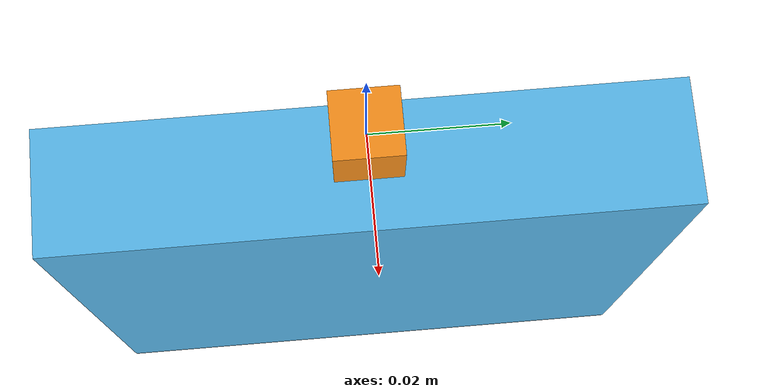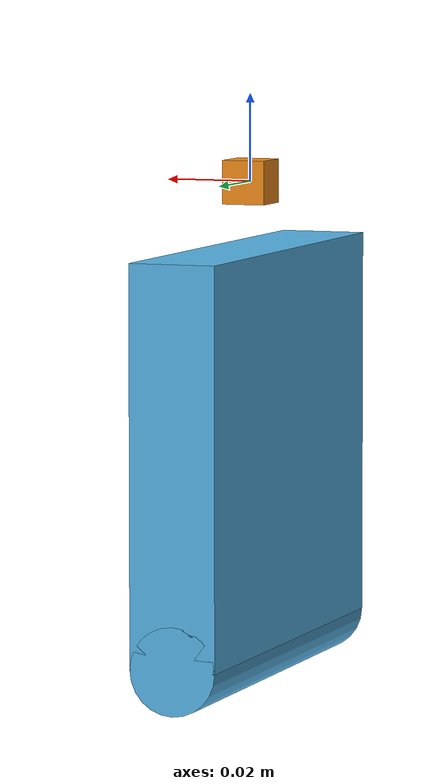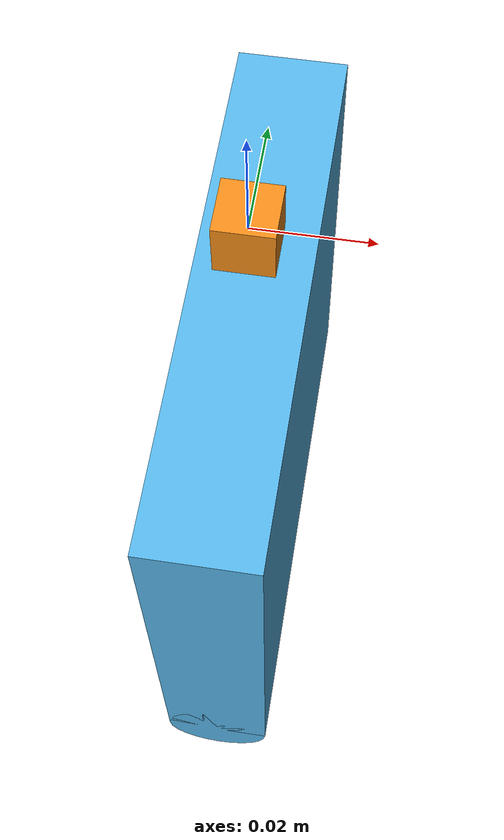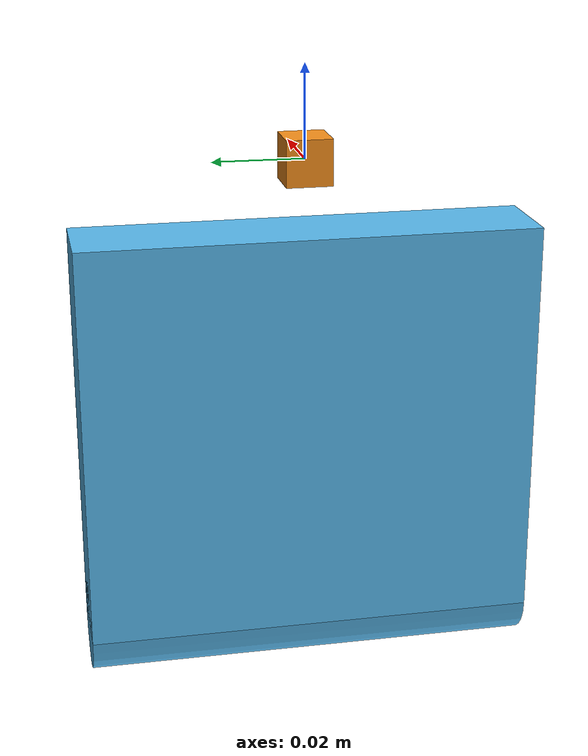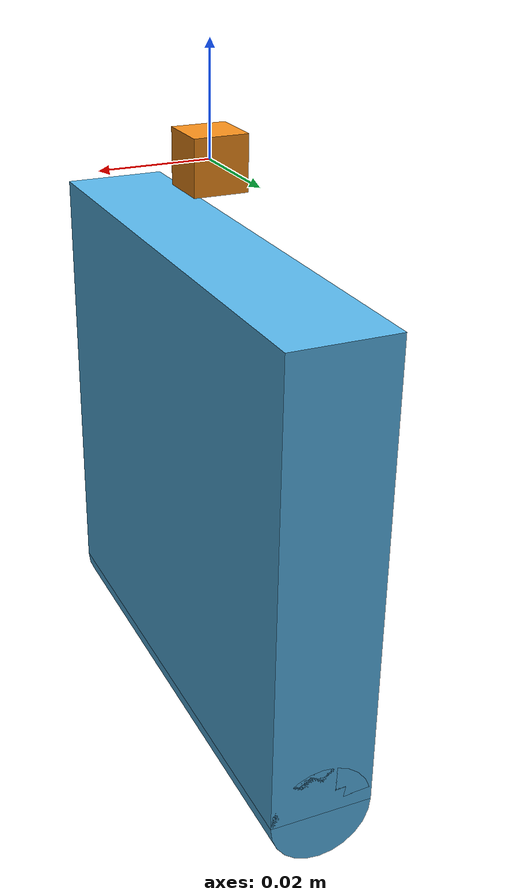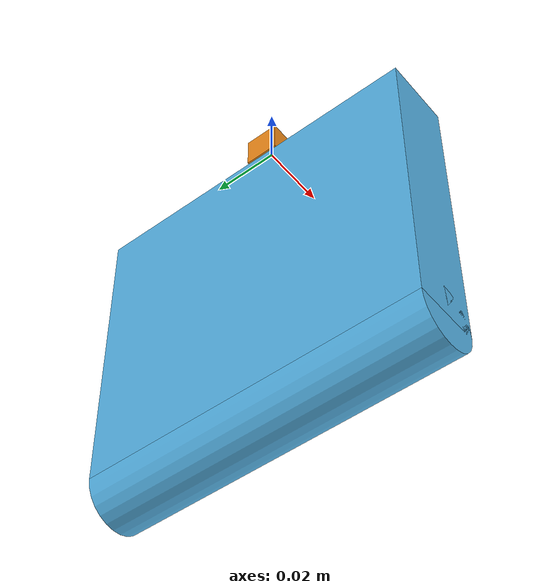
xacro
<?xml version="1.0"?>
<robot name="slider" xmlns:xacro="http://www.ros.org/wiki/xacro">

  <xacro:include filename="$(find planar_folding_assembly)/urdf/slider.urdf.xacro" />

  <gazebo>
    <plugin name="planar_folding_admittance_controller" filename="libsarafun_pfa_planar_folding_admittance_controller.so">
      <target_sliding_angle>${pi/4}</target_sliding_angle>
      <target_sliding_vel>0.005</target_sliding_vel>
      <target_folding_angle>0.1</target_folding_angle>
      <target_normal_force>10</target_normal_force>
      <target_tangential_force>10</target_tangential_force>
      <normal_force_p_gain>0.1</normal_force_p_gain>
      <normal_force_i_gain>0.2</normal_force_i_gain>
      <tangential_force_p_gain>0.1</tangential_force_p_gain>
      <tangential_force_i_gain>0.2</tangential_force_i_gain>
      <rot_gain>0.2</rot_gain>
      <contact_detection_vel>0.005</contact_detection_vel>
      <contact_detection_threshold>0.01</contact_detection_threshold>
      <switch_to_fold_threshold>0.02</switch_to_fold_threshold>
      <switch_to_slide_threshold>0.01</switch_to_slide_threshold>
    </plugin>
  </gazebo>

</robot>

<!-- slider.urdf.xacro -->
<robot name="slider" xmlns:xacro="http://www.ros.org/wiki/xacro">

  <xacro:include filename="$(find planar_folding_assembly)/urdf/constants.urdf.xacro"/>

  <xacro:property name="slider_w" value="0.02" />
  <xacro:property name="slider_l" value="0.1" />

  <xacro:property name="handle_distance" value="0.01" />

  <xacro:property name="slider_box_l" value="${slider_l - slider_w/2}" />

  <xacro:arg name="model_plugin" default="libgazebo_ros_empty_controller.so" />

  <link name="slider_handle" >

    <collision>
      <geometry>
        <box size="${handle_size} ${handle_size} ${handle_size}" />
      </geometry>
    </collision>

    <visual>
      <geometry>
        <box size="${handle_size} ${handle_size} ${handle_size}" />
      </geometry>
      <material name="orange"/>
    </visual>

    <inertial>
      <mass value="${handle_mass}"/>
      <inertia
        ixx="1.0" ixy="0.0" ixz="0.0"
        iyy="1.0" iyz="0.0"
        izz="1.0"/>
    </inertial>

  </link>

  <joint name="slider_joint" type="revolute">

    <origin xyz="0 0 ${-handle_distance-handle_size/2}" rpy="0 0 0" />
    <parent link="slider_handle" />
    <child link="slider" />
    <limit lower="0" upper="0" velocity="1" effort="1" />

  </joint>

  <link name="slider">

    <collision>
      <origin xyz="0 0 ${-slider_box_l/2}" rpy="0 0 0" />
      <geometry>
        <box size="${slider_w} ${objects_depth} ${slider_box_l}" />
      </geometry>
    </collision>
    <collision>
      <origin xyz="0 0 ${-slider_box_l}" rpy="${pi/2} 0 0" />
      <geometry>
        <cylinder radius="${slider_w/2}" length="${objects_depth}" />
      </geometry>
    </collision>

    <visual>
      <origin xyz="0 0 ${-slider_box_l/2}" rpy="0 0 0" />
      <geometry>
        <box size="${slider_w} ${objects_depth} ${slider_box_l}" />
      </geometry>
    </visual>
    <visual>
      <origin xyz="0 0 ${-slider_box_l}" rpy="${pi/2} 0 0" />
      <geometry>
        <cylinder radius="${slider_w/2}" length="${objects_depth}" />
      </geometry>
    </visual>

    <inertial>
      <origin xyz="0 0 ${-slider_l/2}" rpy="0 0 0"/>
      <mass value="1"/>
      <inertia
        ixx="1.0" ixy="0.0" ixz="0.0"
        iyy="1.0" iyz="0.0"
        izz="1.0"/>
    </inertial>

  </link>

  <gazebo reference="slider">
    <mu1>0.0</mu1>
    <mu2>0.0</mu2>
  </gazebo>

</robot>

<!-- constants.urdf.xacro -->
<robot name="planar_folding_assembly_slider" xmlns:xacro="http://www.ros.org/wiki/xacro">

  <xacro:property name="objects_depth" value="0.1" />

  <xacro:property name="handle_size" value="0.01" />
  <xacro:property name="handle_mass" value="0.01" />

  <xacro:property name="pi" value="3.1415926535897931" />

</robot>
